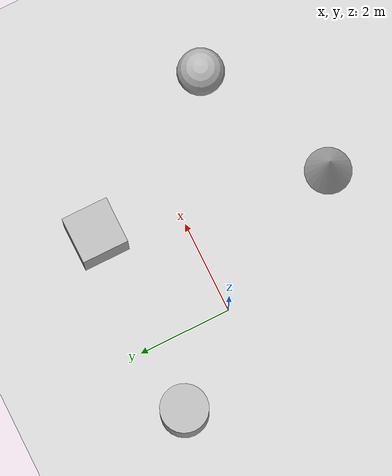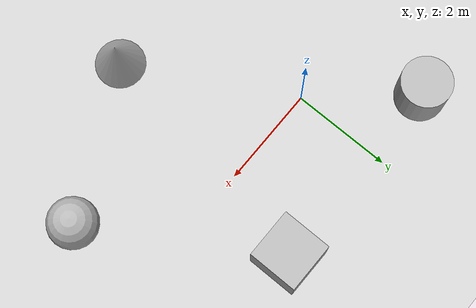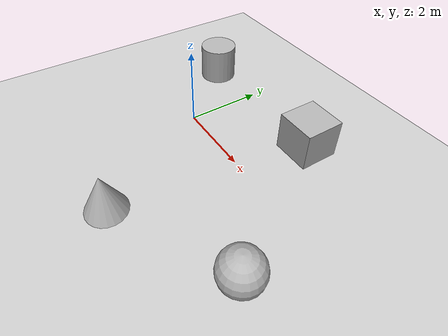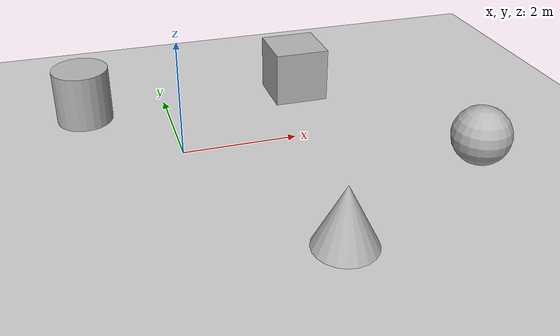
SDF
<?xml version="1.0" ?>
<sdf version="1.5">
  <world name="default">
    <physics name="1ms" type="ignored">
      <max_step_size>0.001</max_step_size>
      <real_time_factor>1.0</real_time_factor>
    </physics>
    <plugin
      filename="gz-sim-physics-system"
      name="gz::sim::systems::Physics">
    </plugin>
    <plugin
      filename="gz-sim-user-commands-system"
      name="gz::sim::systems::UserCommands">
    </plugin>
    <plugin
      filename="gz-sim-scene-broadcaster-system"
      name="gz::sim::systems::SceneBroadcaster">
    </plugin>
    <plugin
      filename="gz-sim-sensors-system"
      name="gz::sim::systems::Sensors">
      <render_engine>ogre2</render_engine>
    </plugin>
    <plugin
      filename="gz-sim-contact-system"
      name="gz::sim::systems::Contact">
    </plugin>

      <light type="directional" name="sun">
      <cast_shadows>true</cast_shadows>
      <pose>0 0 10 0 0 0</pose>
      <diffuse>0.8 0.8 0.8 1</diffuse>
      <specular>0.2 0.2 0.2 1</specular>
      <attenuation>
        <range>1000</range>
        <constant>0.9</constant>
        <linear>0.01</linear>
        <quadratic>0.001</quadratic>
      </attenuation>
      <direction>-0.5 0.1 -0.9</direction>
    </light>
  <model name="ground_plane">
        <static>true</static>
        <link name="link">
          <collision name="collision">
            <geometry>
              <plane>
                <normal>0 0 1</normal>
                <size>100 100</size>
              </plane>
            </geometry>
          </collision>
          <visual name="visual">
            <geometry>
              <plane>
                <normal>0 0 1</normal>
                <size>100 100</size>
              </plane>
            </geometry>
            <material>
              <ambient>0.8 0.8 0.8 1</ambient>
              <diffuse>0.8 0.8 0.8 1</diffuse>
              <specular>0.8 0.8 0.8 1</specular>
            </material>
          </visual>
        </link>
      </model>
     <model name='box'>
      <pose>2.5472646077087351 1.7539181723097492 0.49999999990199806 6.2287739151293738e-22 9.3279666454713669e-22 -3.6315533669320137e-22</pose>
      <link name='box_link'>
        <inertial>
          <inertia>
            <ixx>0.16666</ixx>
            <ixy>0</ixy>
            <ixz>0</ixz>
            <iyy>0.16666</iyy>
            <iyz>0</iyz>
            <izz>0.16666</izz>
          </inertia>
          <mass>1</mass>
          <pose>0 0 0 0 0 0</pose>
        </inertial>
        <collision name='box_collision'>
          <geometry>
            <box>
              <size>1 1 1</size>
            </box>
          </geometry>
          <surface>
            <friction>
              <ode/>
            </friction>
            <bounce/>
            <contact/>
          </surface>
        </collision>
        <visual name='box_visual'>
          <geometry>
            <box>
              <size>1 1 1</size>
            </box>
          </geometry>
          <material>
            <ambient>0.300000012 0.300000012 0.300000012 1</ambient>
            <diffuse>0.699999988 0.699999988 0.699999988 1</diffuse>
            <specular>1 1 1 1</specular>
          </material>
        </visual>
        <pose>0 0 0 0 0 0</pose>
        <enable_wind>false</enable_wind>
      </link>
      <static>false</static>
      <self_collide>false</self_collide>
    </model>
      <model name='sphere'>
      <pose>4.6360594096775376 -1.6688684177078772 0.499999999902001 0 0 0</pose>
      <link name='sphere_link'>
        <inertial>
          <inertia>
            <ixx>0.10000000000000001</ixx>
            <ixy>0</ixy>
            <ixz>0</ixz>
            <iyy>0.10000000000000001</iyy>
            <iyz>0</iyz>
            <izz>0.10000000000000001</izz>
          </inertia>
          <mass>1</mass>
          <pose>0 0 0 0 0 0</pose>
        </inertial>
        <collision name='sphere_collision'>
          <geometry>
            <sphere>
              <radius>0.5</radius>
            </sphere>
          </geometry>
          <surface>
            <friction>
              <ode/>
            </friction>
            <bounce/>
            <contact/>
          </surface>
        </collision>
        <visual name='sphere_visual'>
          <geometry>
            <sphere>
              <radius>0.5</radius>
            </sphere>
          </geometry>
          <material>
            <ambient>0.300000012 0.300000012 0.300000012 1</ambient>
            <diffuse>0.699999988 0.699999988 0.699999988 1</diffuse>
            <specular>1 1 1 1</specular>
          </material>
        </visual>
        <pose>0 0 0 0 0 0</pose>
        <enable_wind>false</enable_wind>
      </link>
      <static>false</static>
      <self_collide>false</self_collide>
    </model>
    <model name='cone'>
      <pose>1.6918042835287657 -3.1433259117502126 0.49999999993296756 5.2545596358786652e-17 -7.7132841034561468e-10 1.0690809589845816e-23</pose>
      <link name='cone_link'>
        <inertial>
          <inertia>
            <ixx>0.074999999999999997</ixx>
            <ixy>0</ixy>
            <ixz>0</ixz>
            <iyy>0.074999999999999997</iyy>
            <iyz>0</iyz>
            <izz>0.074999999999999997</izz>
          </inertia>
          <mass>1</mass>
          <pose>0 0 0 0 0 0</pose>
        </inertial>
        <collision name='cone_collision'>
          <geometry>
            <cone>
              <radius>0.5</radius>
              <length>1</length>
            </cone>
          </geometry>
          <surface>
            <friction>
              <ode/>
            </friction>
            <bounce/>
            <contact/>
          </surface>
        </collision>
        <visual name='cone_visual'>
          <geometry>
            <cone>
              <radius>0.5</radius>
              <length>1</length>
            </cone>
          </geometry>
          <material>
            <ambient>0.300000012 0.300000012 0.300000012 1</ambient>
            <diffuse>0.699999988 0.699999988 0.699999988 1</diffuse>
            <specular>1 1 1 1</specular>
          </material>
        </visual>
        <pose>0 0 0 0 0 0</pose>
        <enable_wind>false</enable_wind>
      </link>
      <static>false</static>
      <self_collide>false</self_collide>
    </model>
    <model name='cylinder'>
      <pose>-1.4920471028123954 1.7383327254792778 0.49999942638036005 -2.8845426660807287e-20 4.5941482614257266e-19 9.6165696736343917e-22</pose>
      <link name='cylinder_link'>
        <inertial>
          <inertia>
            <ixx>0.14580000000000001</ixx>
            <ixy>0</ixy>
            <ixz>0</ixz>
            <iyy>0.14580000000000001</iyy>
            <iyz>0</iyz>
            <izz>0.125</izz>
          </inertia>
          <mass>1</mass>
          <pose>0 0 0 0 0 0</pose>
        </inertial>
        <collision name='cylinder_collision'>
          <geometry>
            <cylinder>
              <radius>0.5</radius>
              <length>1</length>
            </cylinder>
          </geometry>
          <surface>
            <friction>
              <ode/>
            </friction>
            <bounce/>
            <contact/>
          </surface>
        </collision>
        <visual name='cylinder_visual'>
          <geometry>
            <cylinder>
              <radius>0.5</radius>
              <length>1</length>
            </cylinder>
          </geometry>
          <material>
            <ambient>0.300000012 0.300000012 0.300000012 1</ambient>
            <diffuse>0.699999988 0.699999988 0.699999988 1</diffuse>
            <specular>1 1 1 1</specular>
          </material>
        </visual>
        <pose>0 0 0 0 0 0</pose>
        <enable_wind>false</enable_wind>
      </link>
      <static>false</static>
      <self_collide>false</self_collide>
    </model>
  </world>
</sdf>
